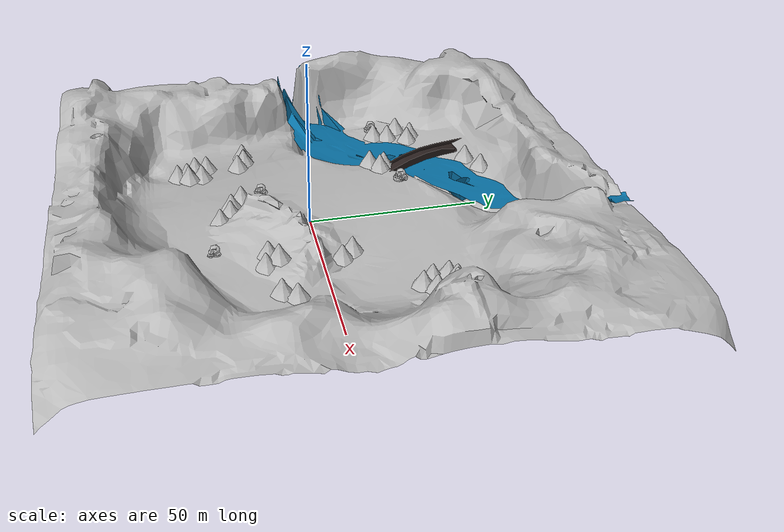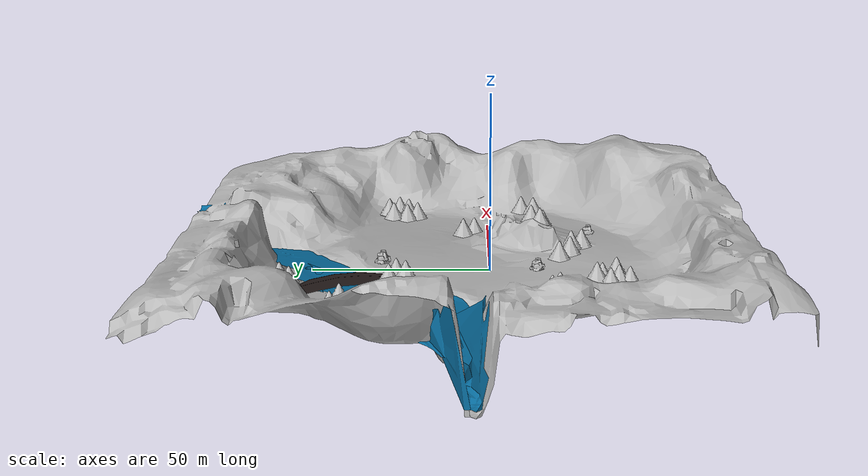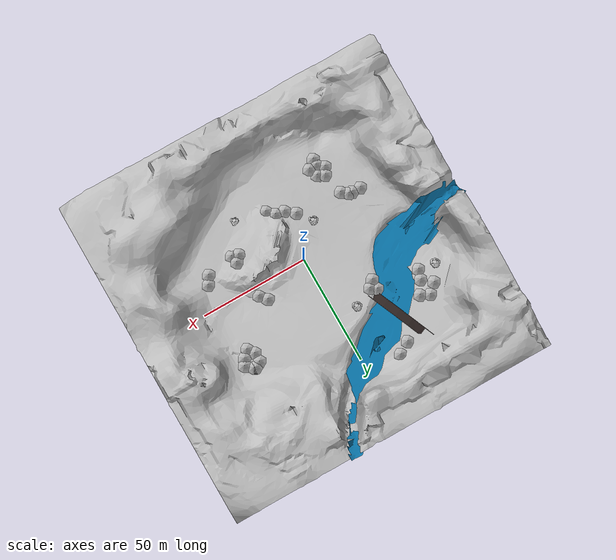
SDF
<sdf version="1.4">
 <world name="my_world">
  <physics type="ode"><max_step_size>0.001</max_step_size></physics>
  <scene><sky><clouds><speed>12</speed></clouds></sky></scene>
  <include><uri>model://sun</uri><pose>0 0 20 0 0 0</pose></include>
  <include><name>Mountain</name><uri>model://alpine</uri></include>
  <include><name>Stream</name><uri>model://river</uri><pose>0 0 6 0 0 0</pose></include>
  <include><name>Path</name><uri>model://path</uri></include>
  <include><name>Bridge</name><uri>model://bridge</uri><pose>0 0 2 0 0 0</pose></include>
  <include>
   <name>bigtree01</name>
   <uri>model://bigtree</uri>
   <pose>38.86263 29.38554 4.57350 0 0 0</pose>
  </include>
  <include>
   <name>bigtree02</name>
   <uri>model://bigtree</uri>
   <pose>38.86263 25.17710 4.14621 0 0 0</pose>
  </include>
  <include>
   <name>bigtree03</name>
   <uri>model://bigtree</uri>
   <pose>41.07924 22.10637 4.14621 0 0 0</pose>
  </include>
  <include>
   <name>bigtree04</name>
   <uri>model://bigtree</uri>
   <pose>43.90557 25.00876 4.62765 0 0 0</pose>
  </include>
  <include>
   <name>bigtree05</name>
   <uri>model://bigtree</uri>
   <pose>45.48324 27.90684 4.85868 0 0 0</pose>
  </include>
  <include>
   <name>bigtree06</name>
   <uri>model://bigtree</uri>
   <pose>41.49298 30.90684 5.25868 0 0 0</pose>
  </include>
  <include>
   <name>bigtree07</name>
   <uri>model://bigtree</uri>
   <pose>42.29485 30.73206 4.80913 0 0 0</pose>
  </include>
  <include><name>bigtree08</name><uri>model://bigtree</uri><pose>22.34931 7.62833 3.67036 0 0 0</pose></include>
  <include><name>bigtree09</name><uri>model://bigtree</uri><pose>24.92662 4.36889 3.33660 0 0 0</pose></include>
  <include>
   <name>bigtree10</name>
   <uri>model://bigtree</uri>
   <pose>41.85464 -10.36215 5.94635 0 0 0</pose>
  </include>
  <include>
   <name>bigtree11</name>
   <uri>model://bigtree</uri>
   <pose>39.57147 -14.00052 6.12221 0 0 0</pose>
  </include>
  <include>
   <name>bigtree12</name>
   <uri>model://bigtree</uri>
   <pose>26.93585 -16.30823 5.19199 0 0 0</pose>
  </include>
  <include>
   <name>bigtree13</name>
   <uri>model://bigtree</uri>
   <pose>26.24914 -12.74547 6.94161 0 0 0</pose>
  </include>
  <include>
   <name>bigtree14</name>
   <uri>model://bigtree</uri>
   <pose>23.88238 -15.26728 6.61375 0 0 0</pose>
  </include>
  <include>
   <name>bigtree15</name>
   <uri>model://bigtree</uri>
   <pose>-6.89177 -18.87130 4.77308 0 0 0</pose>
  </include>
  <include>
   <name>bigtree16</name>
   <uri>model://bigtree</uri>
   <pose>-2.67087 -22.12327 5.05520 0 0 0</pose>
  </include>
  <include>
   <name>bigtree17</name>
   <uri>model://bigtree</uri>
   <pose>1.32705 -22.74022 5.57918 0 0 0</pose>
  </include>
  <include>
   <name>bigtree18</name>
   <uri>model://bigtree</uri>
   <pose>-21.20436 -32.74094 4.41874 0 0 0</pose>
  </include>
  <include>
   <name>bigtree19</name>
   <uri>model://bigtree</uri>
   <pose>4.47336 -25.94409 5.22006 0 0 0</pose>
  </include>
  <include>
   <name>bigtree20</name>
   <uri>model://bigtree</uri>
   <pose>-26.04029 -27.20813 4.41874 0 0 0</pose>
  </include>
  <include>
   <name>bigtree21</name>
   <uri>model://bigtree</uri>
   <pose>-23.05051 -28.92600 3.41874 0 0 0</pose>
  </include>
  <include>
   <name>bigtree22</name>
   <uri>model://bigtree</uri>
   <pose>-27.82486 -30.59659 3.41874 0 0 0</pose>
  </include>
  <include>
   <name>bigtree23</name>
   <uri>model://bigtree</uri>
   <pose>-24.78140 -33.11758 3.41874 0 0 0</pose>
  </include>
  <include>
   <name>bigtree24</name>
   <uri>model://bigtree</uri>
   <pose>-24.96671 -35.94379 3.01874 0 0 0</pose>
  </include>
  <include>
   <name>bigtree25</name>
   <uri>model://bigtree</uri>
   <pose>-15.86740 56.70426 1.29622 0 0 0</pose>
  </include>
  <include>
   <name>bigtree26</name>
   <uri>model://bigtree</uri>
   <pose>-21.20436 53.32072 1.76603 0 0 0</pose>
  </include>
  <include>
   <name>bigtree27</name>
   <uri>model://bigtree</uri>
   <pose>-21.20436 27.01807 2.41874 0 0 0</pose>
  </include>
  <include>
   <name>bigtree28</name>
   <uri>model://bigtree</uri>
   <pose>-18.49202 25.17710 3.20326 0 0 0</pose>
  </include>
  <include>
   <name>bigtree29</name>
   <uri>model://bigtree</uri>
   <pose>-21.20436 22.53934 3.41874 0 0 0</pose>
  </include>
  <include>
   <name>bigtree30</name>
   <uri>model://bigtree</uri>
   <pose>-36.02668 38.44972 1.71045 0 0 0</pose>
  </include>
  <include>
   <name>bigtree31</name>
   <uri>model://bigtree</uri>
   <pose>-40.15932 40.45467 1.01338 0 0 0</pose>
  </include>
  <include>
   <name>bigtree32</name>
   <uri>model://bigtree</uri>
   <pose>-44.18024 36.55897 1.00363 0 0 0</pose>
  </include>
  <include>
   <name>bigtree33</name>
   <uri>model://bigtree</uri>
   <pose>-41.04187 28.39004 1.00717 0 0 0</pose>
  </include>
  <include>
   <name>bigtree34</name>
   <uri>model://bigtree</uri>
   <pose>-39.65509 32.72559 1.09212 0 0 0</pose>
  </include>
  <include>
   <name>bigtree35</name>
   <uri>model://bigtree</uri>
   <pose>-36.85017 -15.24813 1.05247 0 0 0</pose>
  </include>
  <include>
   <name>bigtree36</name>
   <uri>model://bigtree</uri>
   <pose>-32.85017 -15.24813 1.65247 0 0 0</pose>
  </include>
  <include>
   <name>bigtree37</name>
   <uri>model://bigtree</uri>
   <pose>-31.12655 -15.37272 2.45421 0 0 0</pose>
  </include>
  <include>
   <name>bigtree38</name>
   <uri>model://bigtree</uri>
   <pose>-28.31775 -17.55697 2.41874 0 0 0</pose>
  </include>
  <include><name>rock01</name><uri>model://rock</uri><pose>-11.82421 -12.79845 3.77405 0 0 0</pose></include>
  <include><name>rock02</name><uri>model://rock</uri><pose>44.95393 29.26856 2.95500 0 0 0</pose></include>
  <include><name>rock03</name><uri>model://rock</uri><pose>-48.99231 29.26856 0.24997 0 0 0</pose></include>
  <include><name>rock04</name><uri>model://rock</uri><pose>-9.72517 29.26856 5.28880 0 0 0</pose></include>
  <include><name>rock05</name><uri>model://rock</uri><pose>18.09088 -29.15621 5.30530 0 0 0</pose></include>
 </world>
</sdf>

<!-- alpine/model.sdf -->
<sdf version="1.5">
  <model name="alpine_model">
    <static>
      true
    </static>
    <link name="alpine_link">
      <inertial>
        <mass>0.390</mass>
        <inertia>
          <ixx>0.00058</ixx>
          <ixy>0</ixy>
          <ixz>0</ixz>
          <iyy>0.00058</iyy>
          <iyz>0</iyz>
          <izz>0.00019</izz>
        </inertia>
      </inertial>
      <collision name="alpine_collision">
        <geometry>
          <mesh>
            <uri>model://alpine/meshes/alpine.dae</uri>
          </mesh>
        </geometry>
        <surface>
          <friction>
            <ode>
              <mu>1.0</mu>
              <mu2>1.0</mu2>
            </ode>
          </friction>
          <contact>
            <ode>
              <kp>10000000.0</kp>
              <kd>1.0</kd>
              <min_depth>0.001</min_depth>
              <max_vel>0.1</max_vel>
            </ode>
          </contact>
        </surface>
      </collision>
      <visual name="alpine_visual">
        <geometry>
          <mesh>
            <uri>model://alpine/meshes/alpine.dae</uri>
          </mesh>
        </geometry>
      </visual>
    </link>
  </model>
</sdf>

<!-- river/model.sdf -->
<sdf version="1.5">
  <model name="river_model">
<static>
  true
</static>
    <link name="river_link">
      <inertial>
        <mass>0.390</mass>
        <inertia>
          <ixx>0.00058</ixx>
          <ixy>0</ixy>
          <ixz>0</ixz>
          <iyy>0.00058</iyy>
          <iyz>0</iyz>
          <izz>0.00019</izz>
        </inertia>
      </inertial>
      <collision name="river_collision">
        <geometry>
          <mesh>
            <uri>model://river/meshes/river1.dae</uri>
          </mesh>
        </geometry>
        <surface>
          <friction>
            <ode>
              <mu>1.0</mu>
              <mu2>1.0</mu2>
            </ode>
          </friction>
          <contact>
            <ode>
              <kp>10000000.0</kp>
              <kd>1.0</kd>
              <min_depth>0.001</min_depth>
              <max_vel>0.1</max_vel>
            </ode>
          </contact>
        </surface>
      </collision>
      <visual name="stream_visual">
        <geometry>
          <mesh>
            <uri>model://river/meshes/river1.dae</uri>
          </mesh>
        </geometry>
      </visual>
    </link>
  </model>
</sdf>

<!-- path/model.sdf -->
<sdf version="1.5">
  <model name="path_model">
<static>
  true
</static>
    <link name="path_link">
      <inertial>
        <mass>0.390</mass>
        <inertia>
          <ixx>0.00058</ixx>
          <ixy>0</ixy>
          <ixz>0</ixz>
          <iyy>0.00058</iyy>
          <iyz>0</iyz>
          <izz>0.00019</izz>
        </inertia>
      </inertial>
      <collision name="path_collision">
        <geometry>
          <mesh>
            <uri>model://path/meshes/path.dae</uri>
          </mesh>
        </geometry>
        <surface>
          <friction>
            <ode>
              <mu>1.0</mu>
              <mu2>1.0</mu2>
            </ode>
          </friction>
          <contact>
            <ode>
              <kp>10000000.0</kp>
              <kd>1.0</kd>
              <min_depth>0.001</min_depth>
              <max_vel>0.1</max_vel>
            </ode>
          </contact>
        </surface>
      </collision>
      <visual name="path_visual">
        <geometry>
          <mesh>
            <uri>model://path/meshes/path.dae</uri>
          </mesh>
        </geometry>
      </visual>
    </link>
  </model>
</sdf>

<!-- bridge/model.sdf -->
<sdf version="1.5">
  <model name="bridge_model">
<static>
  true
</static>
    <link name="bridge_link">
      <inertial>
        <mass>0.390</mass>
        <inertia>
          <ixx>0.00058</ixx>
          <ixy>0</ixy>
          <ixz>0</ixz>
          <iyy>0.00058</iyy>
          <iyz>0</iyz>
          <izz>0.00019</izz>
        </inertia>
      </inertial>
      <collision name="bridge_collision">
        <geometry>
          <mesh>
            <uri>model://bridge/meshes/bridge.dae</uri>
          </mesh>
        </geometry>
        <surface>
          <friction>
            <ode>
              <mu>1.0</mu>
              <mu2>1.0</mu2>
            </ode>
          </friction>
          <contact>
            <ode>
              <kp>10000000.0</kp>
              <kd>1.0</kd>
              <min_depth>0.001</min_depth>
              <max_vel>0.1</max_vel>
            </ode>
          </contact>
        </surface>
      </collision>
      <visual name="bridge_visual">
        <geometry>
          <mesh>
            <uri>model://bridge/meshes/bridge.dae</uri>
          </mesh>
        </geometry>
      </visual>
    </link>
  </model>
</sdf>

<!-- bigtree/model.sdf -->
<sdf version="1.5">
  <model name="bigtree_model">
<static>
true
</static>
    <link name="bigtree_link">
      <inertial>
        <mass>0.390</mass>
        <inertia>
          <ixx>0.00058</ixx>
          <ixy>0</ixy>
          <ixz>0</ixz>
          <iyy>0.00058</iyy>
          <iyz>0</iyz>
          <izz>0.00019</izz>
        </inertia>
      </inertial>
      <collision name="bigtree_collision">
        <geometry>
          <mesh>
            <uri>model://bigtree/meshes/tanne2.dae</uri>
          </mesh>
        </geometry>
        <surface>
          <friction>
            <ode>
              <mu>1.0</mu>
              <mu2>1.0</mu2>
            </ode>
          </friction>
          <contact>
            <ode>
              <kp>10000000.0</kp>
              <kd>1.0</kd>
              <min_depth>0.001</min_depth>
              <max_vel>0.1</max_vel>
            </ode>
          </contact>
        </surface>
      </collision>
      <visual name="bigtree_visual">
        <geometry>
          <mesh>
            <uri>model://bigtree/meshes/tanne2.dae</uri>
          </mesh>
        </geometry>
      </visual>
    </link>
  </model>
</sdf>

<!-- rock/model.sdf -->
<sdf version='1.4'>
  <model name="rock">
      <static>1</static>
        <link name='link_1'>
            <visual name='visual'>
            <pose frame=''>0 0 0 0 0 0</pose>
            <geometry>
            <mesh>
                <uri>model://rock/meshes/rock.dae</uri>
                <scale>1.0 1.0 1.0</scale>
            </mesh>
            </geometry>
            <cast_shadows>0</cast_shadows>
            <transparency>0</transparency>
        </visual>

        <collision name='collision'>
            <laser_retro>0</laser_retro>
            <pose frame=''>0 0 0 0 0 0</pose>
            <geometry>
            <mesh>
                <uri>model://rock/meshes/rock.dae</uri>
                <scale>1.0 1.0 1.0</scale>
            </mesh>
            </geometry>
        </collision>
        </link>
  </model>
</sdf>
